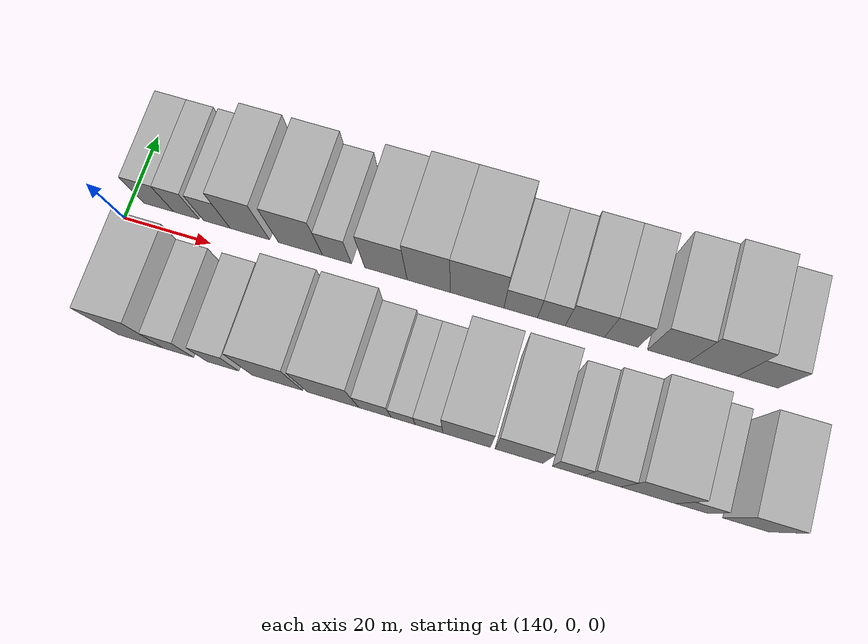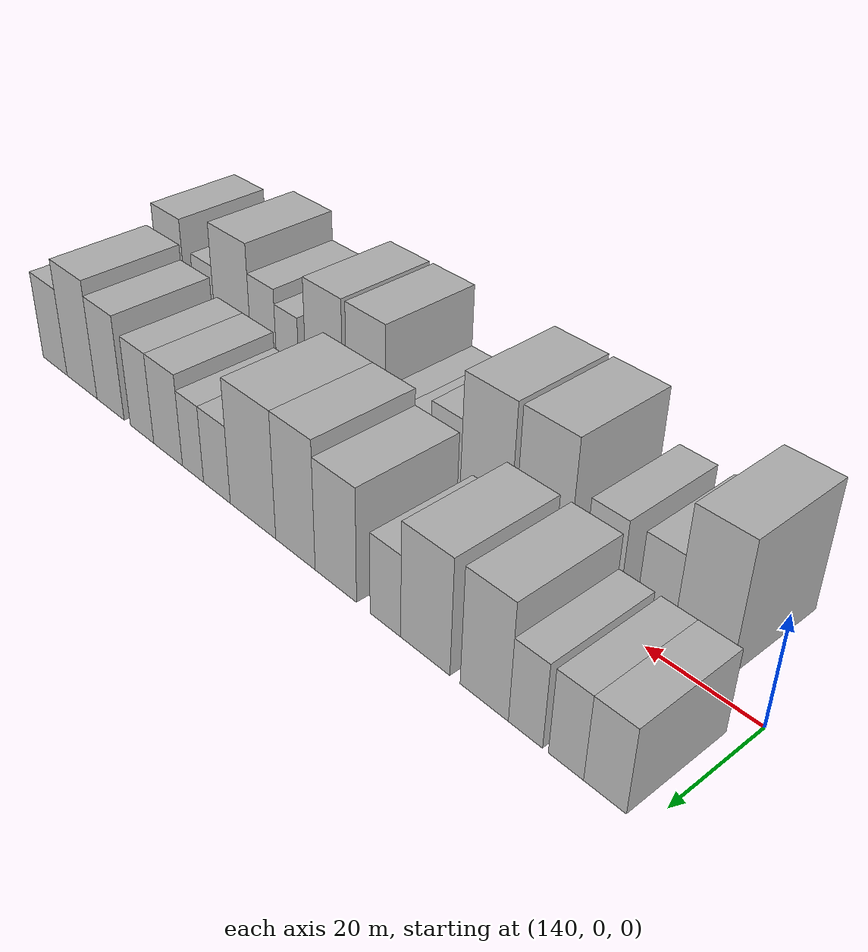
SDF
<sdf version="1.6">
 <world name="default">
  <model name="building_15">
   <static>1</static>
   <pose>146.3079 14.5000 0 0.000000 0.000000 1.570796</pose>
   <link name="link">
    <pose>0 0 7.50 0 0 0</pose>
    <collision name="collision"><geometry><box><size>20.0000 6.9737 15.0000</size></box></geometry></collision>
    <visual name="visual">
     <cast_shadows>0</cast_shadows>
     <geometry><box><size>20.0000 6.9737 15.0000</size></box></geometry>
     <material>
      <script>
       <uri>model://HANNAS_wall/materials/scripts</uri>
       <uri>model://HANNAS_wall/materials/textures</uri>
       <name>vrc/HANNAS_wall</name>
      </script>
     </material>
    </visual>
   </link>
  </model>
  <model name="building_16">
   <static>1</static>
   <pose>152.7990 14.5000 0 0.000000 0.000000 1.570796</pose>
   <link name="link">
    <pose>0 0 7.50 0 0 0</pose>
    <collision name="collision"><geometry><box><size>20.0000 6.0084 15.0000</size></box></geometry></collision>
    <visual name="visual">
     <cast_shadows>0</cast_shadows>
     <geometry><box><size>20.0000 6.0084 15.0000</size></box></geometry>
     <material>
      <script>
       <uri>model://HANNAS_wall/materials/scripts</uri>
       <uri>model://HANNAS_wall/materials/textures</uri>
       <name>vrc/HANNAS_wall</name>
      </script>
     </material>
    </visual>
   </link>
  </model>
  <model name="building_17">
   <static>1</static>
   <pose>159.8689 14.5000 0 0.000000 0.000000 1.570796</pose>
   <link name="link">
    <pose>0 0 7.50 0 0 0</pose>
    <collision name="collision"><geometry><box><size>20.0000 6.1314 15.0000</size></box></geometry></collision>
    <visual name="visual">
     <cast_shadows>0</cast_shadows>
     <geometry><box><size>20.0000 6.1314 15.0000</size></box></geometry>
     <material>
      <script>
       <uri>model://HANNAS_wall/materials/scripts</uri>
       <uri>model://HANNAS_wall/materials/textures</uri>
       <name>vrc/HANNAS_wall</name>
      </script>
     </material>
    </visual>
   </link>
  </model>
  <model name="building_18">
   <static>1</static>
   <pose>167.4935 14.5000 0 0.000000 0.000000 1.570796</pose>
   <link name="link">
    <pose>0 0 10.50 0 0 0</pose>
    <collision name="collision"><geometry><box><size>20.0000 9.1178 21.0000</size></box></geometry></collision>
    <visual name="visual">
     <cast_shadows>0</cast_shadows>
     <geometry><box><size>20.0000 9.1178 21.0000</size></box></geometry>
     <material>
      <script>
       <uri>model://HANNAS_wall/materials/scripts</uri>
       <uri>model://HANNAS_wall/materials/textures</uri>
       <name>vrc/HANNAS_wall</name>
      </script>
     </material>
    </visual>
   </link>
  </model>
  <model name="building_19">
   <static>1</static>
   <pose>179.1088 14.5000 0 0.000000 0.000000 1.570796</pose>
   <link name="link">
    <pose>0 0 10.50 0 0 0</pose>
    <collision name="collision"><geometry><box><size>20.0000 10.1128 21.0000</size></box></geometry></collision>
    <visual name="visual">
     <cast_shadows>0</cast_shadows>
     <geometry><box><size>20.0000 10.1128 21.0000</size></box></geometry>
     <material>
      <script>
       <uri>model://HANNAS_wall/materials/scripts</uri>
       <uri>model://HANNAS_wall/materials/textures</uri>
       <name>vrc/HANNAS_wall</name>
      </script>
     </material>
    </visual>
   </link>
  </model>
  <model name="building_20">
   <static>1</static>
   <pose>187.4442 14.5000 0 0.000000 0.000000 1.570796</pose>
   <link name="link">
    <pose>0 0 7.50 0 0 0</pose>
    <collision name="collision"><geometry><box><size>20.0000 6.5579 15.0000</size></box></geometry></collision>
    <visual name="visual">
     <cast_shadows>0</cast_shadows>
     <geometry><box><size>20.0000 6.5579 15.0000</size></box></geometry>
     <material>
      <script>
       <uri>model://HANNAS_wall/materials/scripts</uri>
       <uri>model://HANNAS_wall/materials/textures</uri>
       <name>vrc/HANNAS_wall</name>
      </script>
     </material>
    </visual>
   </link>
  </model>
  <model name="building_21">
   <static>1</static>
   <pose>198.5061 14.5000 0 0.000000 0.000000 1.570796</pose>
   <link name="link">
    <pose>0 0 10.50 0 0 0</pose>
    <collision name="collision"><geometry><box><size>20.0000 9.5661 21.0000</size></box></geometry></collision>
    <visual name="visual">
     <cast_shadows>0</cast_shadows>
     <geometry><box><size>20.0000 9.5661 21.0000</size></box></geometry>
     <material>
      <script>
       <uri>model://HANNAS_wall/materials/scripts</uri>
       <uri>model://HANNAS_wall/materials/textures</uri>
       <name>vrc/HANNAS_wall</name>
      </script>
     </material>
    </visual>
   </link>
  </model>
  <model name="building_22">
   <static>1</static>
   <pose>208.1261 14.5000 0 0.000000 0.000000 1.570796</pose>
   <link name="link">
    <pose>0 0 12.00 0 0 0</pose>
    <collision name="collision"><geometry><box><size>20.0000 9.6738 24.0000</size></box></geometry></collision>
    <visual name="visual">
     <cast_shadows>0</cast_shadows>
     <geometry><box><size>20.0000 9.6738 24.0000</size></box></geometry>
     <material>
      <script>
       <uri>model://HANNAS_wall/materials/scripts</uri>
       <uri>model://HANNAS_wall/materials/textures</uri>
       <name>vrc/HANNAS_wall</name>
      </script>
     </material>
    </visual>
   </link>
  </model>
  <model name="building_23">
   <static>1</static>
   <pose>218.9096 14.5000 0 0.000000 0.000000 1.570796</pose>
   <link name="link">
    <pose>0 0 12.00 0 0 0</pose>
    <collision name="collision"><geometry><box><size>20.0000 11.8933 24.0000</size></box></geometry></collision>
    <visual name="visual">
     <cast_shadows>0</cast_shadows>
     <geometry><box><size>20.0000 11.8933 24.0000</size></box></geometry>
     <material>
      <script>
       <uri>model://HANNAS_wall/materials/scripts</uri>
       <uri>model://HANNAS_wall/materials/textures</uri>
       <name>vrc/HANNAS_wall</name>
      </script>
     </material>
    </visual>
   </link>
  </model>
  <model name="building_24">
   <static>1</static>
   <pose>228.5518 14.5000 0 0.000000 0.000000 1.570796</pose>
   <link name="link">
    <pose>0 0 7.50 0 0 0</pose>
    <collision name="collision"><geometry><box><size>20.0000 7.3909 15.0000</size></box></geometry></collision>
    <visual name="visual">
     <cast_shadows>0</cast_shadows>
     <geometry><box><size>20.0000 7.3909 15.0000</size></box></geometry>
     <material>
      <script>
       <uri>model://HANNAS_wall/materials/scripts</uri>
       <uri>model://HANNAS_wall/materials/textures</uri>
       <name>vrc/HANNAS_wall</name>
      </script>
     </material>
    </visual>
   </link>
  </model>
  <model name="building_25">
   <static>1</static>
   <pose>235.2798 14.5000 0 0.000000 0.000000 1.570796</pose>
   <link name="link">
    <pose>0 0 7.50 0 0 0</pose>
    <collision name="collision"><geometry><box><size>20.0000 6.0652 15.0000</size></box></geometry></collision>
    <visual name="visual">
     <cast_shadows>0</cast_shadows>
     <geometry><box><size>20.0000 6.0652 15.0000</size></box></geometry>
     <material>
      <script>
       <uri>model://HANNAS_wall/materials/scripts</uri>
       <uri>model://HANNAS_wall/materials/textures</uri>
       <name>vrc/HANNAS_wall</name>
      </script>
     </material>
    </visual>
   </link>
  </model>
  <model name="building_26">
   <static>1</static>
   <pose>242.6105 14.5000 0 0.000000 0.000000 1.570796</pose>
   <link name="link">
    <pose>0 0 9.00 0 0 0</pose>
    <collision name="collision"><geometry><box><size>20.0000 8.5960 18.0000</size></box></geometry></collision>
    <visual name="visual">
     <cast_shadows>0</cast_shadows>
     <geometry><box><size>20.0000 8.5960 18.0000</size></box></geometry>
     <material>
      <script>
       <uri>model://HANNAS_wall/materials/scripts</uri>
       <uri>model://HANNAS_wall/materials/textures</uri>
       <name>vrc/HANNAS_wall</name>
      </script>
     </material>
    </visual>
   </link>
  </model>
  <model name="building_27">
   <static>1</static>
   <pose>250.5781 14.5000 0 0.000000 0.000000 1.570796</pose>
   <link name="link">
    <pose>0 0 9.00 0 0 0</pose>
    <collision name="collision"><geometry><box><size>20.0000 7.3392 18.0000</size></box></geometry></collision>
    <visual name="visual">
     <cast_shadows>0</cast_shadows>
     <geometry><box><size>20.0000 7.3392 18.0000</size></box></geometry>
     <material>
      <script>
       <uri>model://HANNAS_wall/materials/scripts</uri>
       <uri>model://HANNAS_wall/materials/textures</uri>
       <name>vrc/HANNAS_wall</name>
      </script>
     </material>
    </visual>
   </link>
  </model>
  <model name="building_28">
   <static>1</static>
   <pose>260.6946 14.5000 0 0.000000 0.000000 1.570796</pose>
   <link name="link">
    <pose>0 0 10.50 0 0 0</pose>
    <collision name="collision"><geometry><box><size>20.0000 8.8939 21.0000</size></box></geometry></collision>
    <visual name="visual">
     <cast_shadows>0</cast_shadows>
     <geometry><box><size>20.0000 8.8939 21.0000</size></box></geometry>
     <material>
      <script>
       <uri>model://HANNAS_wall/materials/scripts</uri>
       <uri>model://HANNAS_wall/materials/textures</uri>
       <name>vrc/HANNAS_wall</name>
      </script>
     </material>
    </visual>
   </link>
  </model>
  <model name="building_29">
   <static>1</static>
   <pose>270.3344 14.5000 0 0.000000 0.000000 1.570796</pose>
   <link name="link">
    <pose>0 0 12.00 0 0 0</pose>
    <collision name="collision"><geometry><box><size>20.0000 10.3856 24.0000</size></box></geometry></collision>
    <visual name="visual">
     <cast_shadows>0</cast_shadows>
     <geometry><box><size>20.0000 10.3856 24.0000</size></box></geometry>
     <material>
      <script>
       <uri>model://HANNAS_wall/materials/scripts</uri>
       <uri>model://HANNAS_wall/materials/textures</uri>
       <name>vrc/HANNAS_wall</name>
      </script>
     </material>
    </visual>
   </link>
  </model>
  <model name="building_30">
   <static>1</static>
   <pose>279.8610 14.5000 0 0.000000 0.000000 1.570796</pose>
   <link name="link">
    <pose>0 0 9.00 0 0 0</pose>
    <collision name="collision"><geometry><box><size>20.0000 8.6677 18.0000</size></box></geometry></collision>
    <visual name="visual">
     <cast_shadows>0</cast_shadows>
     <geometry><box><size>20.0000 8.6677 18.0000</size></box></geometry>
     <material>
      <script>
       <uri>model://HANNAS_wall/materials/scripts</uri>
       <uri>model://HANNAS_wall/materials/textures</uri>
       <name>vrc/HANNAS_wall</name>
      </script>
     </material>
    </visual>
   </link>
  </model>
  <model name="building_46">
   <static>1</static>
   <pose>153.6640 -14.5000 0 0.000000 0.000000 1.570796</pose>
   <link name="link">
    <pose>0 0 12.00 0 0 0</pose>
    <collision name="collision"><geometry><box><size>20.0000 10.1531 24.0000</size></box></geometry></collision>
    <visual name="visual">
     <cast_shadows>0</cast_shadows>
     <geometry><box><size>20.0000 10.1531 24.0000</size></box></geometry>
     <material>
      <script>
       <uri>model://HANNAS_wall/materials/scripts</uri>
       <uri>model://HANNAS_wall/materials/textures</uri>
       <name>vrc/HANNAS_wall</name>
      </script>
     </material>
    </visual>
   </link>
  </model>
  <model name="building_47">
   <static>1</static>
   <pose>162.1200 -14.5000 0 0.000000 0.000000 1.570796</pose>
   <link name="link">
    <pose>0 0 7.50 0 0 0</pose>
    <collision name="collision"><geometry><box><size>20.0000 6.7589 15.0000</size></box></geometry></collision>
    <visual name="visual">
     <cast_shadows>0</cast_shadows>
     <geometry><box><size>20.0000 6.7589 15.0000</size></box></geometry>
     <material>
      <script>
       <uri>model://HANNAS_wall/materials/scripts</uri>
       <uri>model://HANNAS_wall/materials/textures</uri>
       <name>vrc/HANNAS_wall</name>
      </script>
     </material>
    </visual>
   </link>
  </model>
  <model name="building_48">
   <static>1</static>
   <pose>172.0399 -14.5000 0 0.000000 0.000000 1.570796</pose>
   <link name="link">
    <pose>0 0 7.50 0 0 0</pose>
    <collision name="collision"><geometry><box><size>20.0000 7.0809 15.0000</size></box></geometry></collision>
    <visual name="visual">
     <cast_shadows>0</cast_shadows>
     <geometry><box><size>20.0000 7.0809 15.0000</size></box></geometry>
     <material>
      <script>
       <uri>model://HANNAS_wall/materials/scripts</uri>
       <uri>model://HANNAS_wall/materials/textures</uri>
       <name>vrc/HANNAS_wall</name>
      </script>
     </material>
    </visual>
   </link>
  </model>
  <model name="building_49">
   <static>1</static>
   <pose>184.1553 -14.5000 0 0.000000 0.000000 1.570796</pose>
   <link name="link">
    <pose>0 0 12.00 0 0 0</pose>
    <collision name="collision"><geometry><box><size>20.0000 11.1499 24.0000</size></box></geometry></collision>
    <visual name="visual">
     <cast_shadows>0</cast_shadows>
     <geometry><box><size>20.0000 11.1499 24.0000</size></box></geometry>
     <material>
      <script>
       <uri>model://HANNAS_wall/materials/scripts</uri>
       <uri>model://HANNAS_wall/materials/textures</uri>
       <name>vrc/HANNAS_wall</name>
      </script>
     </material>
    </visual>
   </link>
  </model>
  <model name="building_50">
   <static>1</static>
   <pose>196.3559 -14.5000 0 0.000000 0.000000 1.570796</pose>
   <link name="link">
    <pose>0 0 12.00 0 0 0</pose>
    <collision name="collision"><geometry><box><size>20.0000 11.2513 24.0000</size></box></geometry></collision>
    <visual name="visual">
     <cast_shadows>0</cast_shadows>
     <geometry><box><size>20.0000 11.2513 24.0000</size></box></geometry>
     <material>
      <script>
       <uri>model://HANNAS_wall/materials/scripts</uri>
       <uri>model://HANNAS_wall/materials/textures</uri>
       <name>vrc/HANNAS_wall</name>
      </script>
     </material>
    </visual>
   </link>
  </model>
  <model name="building_51">
   <static>1</static>
   <pose>205.4983 -14.5000 0 0.000000 0.000000 1.570796</pose>
   <link name="link">
    <pose>0 0 7.50 0 0 0</pose>
    <collision name="collision"><geometry><box><size>20.0000 7.0336 15.0000</size></box></geometry></collision>
    <visual name="visual">
     <cast_shadows>0</cast_shadows>
     <geometry><box><size>20.0000 7.0336 15.0000</size></box></geometry>
     <material>
      <script>
       <uri>model://HANNAS_wall/materials/scripts</uri>
       <uri>model://HANNAS_wall/materials/textures</uri>
       <name>vrc/HANNAS_wall</name>
      </script>
     </material>
    </visual>
   </link>
  </model>
  <model name="building_52">
   <static>1</static>
   <pose>211.6192 -14.5000 0 0.000000 0.000000 1.570796</pose>
   <link name="link">
    <pose>0 0 6.00 0 0 0</pose>
    <collision name="collision"><geometry><box><size>20.0000 5.2082 12.0000</size></box></geometry></collision>
    <visual name="visual">
     <cast_shadows>0</cast_shadows>
     <geometry><box><size>20.0000 5.2082 12.0000</size></box></geometry>
     <material>
      <script>
       <uri>model://HANNAS_wall/materials/scripts</uri>
       <uri>model://HANNAS_wall/materials/textures</uri>
       <name>vrc/HANNAS_wall</name>
      </script>
     </material>
    </visual>
   </link>
  </model>
  <model name="building_53">
   <static>1</static>
   <pose>217.1799 -14.5000 0 0.000000 0.000000 1.570796</pose>
   <link name="link">
    <pose>0 0 6.00 0 0 0</pose>
    <collision name="collision"><geometry><box><size>20.0000 5.9132 12.0000</size></box></geometry></collision>
    <visual name="visual">
     <cast_shadows>0</cast_shadows>
     <geometry><box><size>20.0000 5.9132 12.0000</size></box></geometry>
     <material>
      <script>
       <uri>model://HANNAS_wall/materials/scripts</uri>
       <uri>model://HANNAS_wall/materials/textures</uri>
       <name>vrc/HANNAS_wall</name>
      </script>
     </material>
    </visual>
   </link>
  </model>
  <model name="building_54">
   <static>1</static>
   <pose>225.2104 -14.5000 0 0.000000 0.000000 1.570796</pose>
   <link name="link">
    <pose>0 0 12.00 0 0 0</pose>
    <collision name="collision"><geometry><box><size>20.0000 10.1478 24.0000</size></box></geometry></collision>
    <visual name="visual">
     <cast_shadows>0</cast_shadows>
     <geometry><box><size>20.0000 10.1478 24.0000</size></box></geometry>
     <material>
      <script>
       <uri>model://HANNAS_wall/materials/scripts</uri>
       <uri>model://HANNAS_wall/materials/textures</uri>
       <name>vrc/HANNAS_wall</name>
      </script>
     </material>
    </visual>
   </link>
  </model>
  <model name="building_55">
   <static>1</static>
   <pose>236.3789 -14.5000 0 0.000000 0.000000 1.570796</pose>
   <link name="link">
    <pose>0 0 12.00 0 0 0</pose>
    <collision name="collision"><geometry><box><size>20.0000 10.1893 24.0000</size></box></geometry></collision>
    <visual name="visual">
     <cast_shadows>0</cast_shadows>
     <geometry><box><size>20.0000 10.1893 24.0000</size></box></geometry>
     <material>
      <script>
       <uri>model://HANNAS_wall/materials/scripts</uri>
       <uri>model://HANNAS_wall/materials/textures</uri>
       <name>vrc/HANNAS_wall</name>
      </script>
     </material>
    </visual>
   </link>
  </model>
  <model name="building_56">
   <static>1</static>
   <pose>246.7612 -14.5000 0 0.000000 0.000000 1.570796</pose>
   <link name="link">
    <pose>0 0 7.50 0 0 0</pose>
    <collision name="collision"><geometry><box><size>20.0000 6.5752 15.0000</size></box></geometry></collision>
    <visual name="visual">
     <cast_shadows>0</cast_shadows>
     <geometry><box><size>20.0000 6.5752 15.0000</size></box></geometry>
     <material>
      <script>
       <uri>model://HANNAS_wall/materials/scripts</uri>
       <uri>model://HANNAS_wall/materials/textures</uri>
       <name>vrc/HANNAS_wall</name>
      </script>
     </material>
    </visual>
   </link>
  </model>
  <model name="building_57">
   <static>1</static>
   <pose>253.9238 -14.5000 0 0.000000 0.000000 1.570796</pose>
   <link name="link">
    <pose>0 0 9.00 0 0 0</pose>
    <collision name="collision"><geometry><box><size>20.0000 7.7500 18.0000</size></box></geometry></collision>
    <visual name="visual">
     <cast_shadows>0</cast_shadows>
     <geometry><box><size>20.0000 7.7500 18.0000</size></box></geometry>
     <material>
      <script>
       <uri>model://HANNAS_wall/materials/scripts</uri>
       <uri>model://HANNAS_wall/materials/textures</uri>
       <name>vrc/HANNAS_wall</name>
      </script>
     </material>
    </visual>
   </link>
  </model>
  <model name="building_58">
   <static>1</static>
   <pose>263.5235 -14.5000 0 0.000000 0.000000 1.570796</pose>
   <link name="link">
    <pose>0 0 12.00 0 0 0</pose>
    <collision name="collision"><geometry><box><size>20.0000 11.4494 24.0000</size></box></geometry></collision>
    <visual name="visual">
     <cast_shadows>0</cast_shadows>
     <geometry><box><size>20.0000 11.4494 24.0000</size></box></geometry>
     <material>
      <script>
       <uri>model://HANNAS_wall/materials/scripts</uri>
       <uri>model://HANNAS_wall/materials/textures</uri>
       <name>vrc/HANNAS_wall</name>
      </script>
     </material>
    </visual>
   </link>
  </model>
  <model name="building_59">
   <static>1</static>
   <pose>272.5755 -14.5000 0 0.000000 0.000000 1.570796</pose>
   <link name="link">
    <pose>0 0 7.50 0 0 0</pose>
    <collision name="collision"><geometry><box><size>20.0000 6.6547 15.0000</size></box></geometry></collision>
    <visual name="visual">
     <cast_shadows>0</cast_shadows>
     <geometry><box><size>20.0000 6.6547 15.0000</size></box></geometry>
     <material>
      <script>
       <uri>model://HANNAS_wall/materials/scripts</uri>
       <uri>model://HANNAS_wall/materials/textures</uri>
       <name>vrc/HANNAS_wall</name>
      </script>
     </material>
    </visual>
   </link>
  </model>
  <model name="building_60">
   <static>1</static>
   <pose>283.6511 -14.5000 0 0.000000 0.000000 1.570796</pose>
   <link name="link">
    <pose>0 0 10.50 0 0 0</pose>
    <collision name="collision"><geometry><box><size>20.0000 9.4964 21.0000</size></box></geometry></collision>
    <visual name="visual">
     <cast_shadows>0</cast_shadows>
     <geometry><box><size>20.0000 9.4964 21.0000</size></box></geometry>
     <material>
      <script>
       <uri>model://HANNAS_wall/materials/scripts</uri>
       <uri>model://HANNAS_wall/materials/textures</uri>
       <name>vrc/HANNAS_wall</name>
      </script>
     </material>
    </visual>
   </link>
  </model>
 </world>
</sdf>
